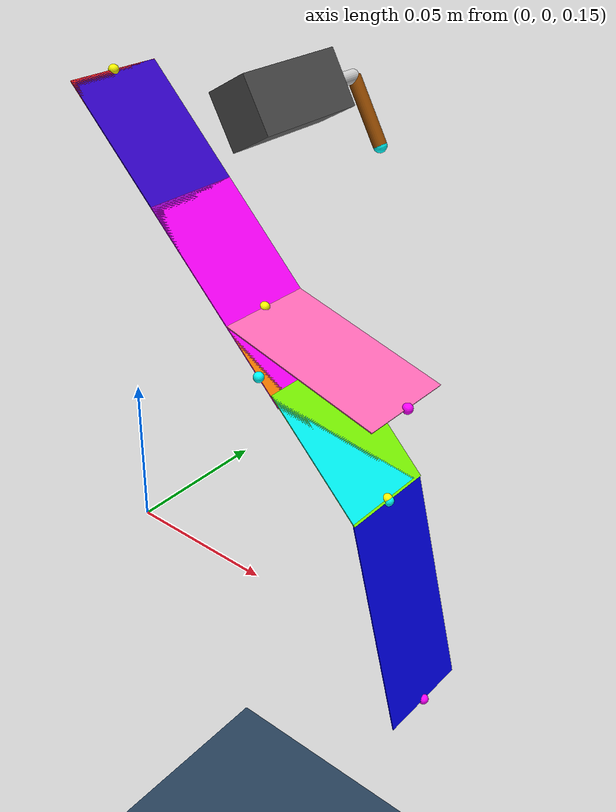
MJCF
<mujoco>
    <option timestep="0.0001" gravity="0 0 -9.81" iterations="50" solver="Newton">
        <flag contact="enable" />
    </option>
    <asset>
        <texture type="skybox" builtin="gradient" rgb1="0.3 0.5 0.7" rgb2="0 0 0" width="512" height="3072"/>
        <texture type="2d" name="groundplane" builtin="checker" mark="edge" rgb1="0.2 0.3 0.4" rgb2="0.1 0.2 0.3" markrgb="0.8 0.8 0.8" width="300" height="300"/>
        <material name="groundplane" texture="groundplane" texuniform="true" texrepeat="5 5" reflectance="0.2"/>
    </asset>
    <default>
        <default class="cardstock">
            <joint type="hinge" damping="0.001" stiffness="0.01" frictionloss="0.001" armature="0.0001"/>
            <geom rgba="0.9 0.9 0.8 1" mass="0.001" margin="0.0002" condim="3"/>
        </default>
    </default>

    <worldbody>
        <light pos="0 0 1" />
        <geom name="floor" size="0 0 0.05" type="plane" material="groundplane"/>
        <camera name="side_view" pos="0 -0.2 0.3" xyaxes="1 0 0 0 1 1" />

        <body name="larger_strip_1" pos="0 0 0.3" axisangle="0 1 0 45">
            <joint name="larger_hinge_1" class="cardstock" axis="0 1 0" />
            <site name="triangle_site" pos="0 0 0" size="0.0015" rgba="1 1 0 1" />
            <geom type="box" size="0.02075 0.015 0.00015" rgba="0.9 0.1 0.1 1" pos="0.02075 0 0"/>

            <body name="larger_strip_2" pos="0.0415 0 0">
                <joint name="larger_hinge_2" class="cardstock" axis="0 1 0" />
                <geom type="box" size="0.0279 0.015 0.00015" rgba="1 0.5 0 1" pos="0.0279 0 0"/>

                <body name="motor_connector_1" pos="0 0 0">
                    <joint name="motor_joint_1" class="cardstock" axis="0 1 0" />
                    <geom type="box" size="0.025 0.015 0.00015" rgba="1 1 0 1" pos="0.025 0 0"/>
                    <site name="motor_connector_1_site" pos="0.05 0 0" size="0.0015" rgba="0 1 1 1"/>
                    <site name="motor_connector_3_site" pos="0.05 -0.015 0.00015" size="0.0015" rgba="0 1 1 1"/>
                </body>

                <body name="larger_strip_3" pos="0.0558 0 0.00035">
                    <joint name="larger_hinge_3" class="cardstock" axis="0 1 0" />
                    <geom type="box" size="0.02005 0.015 0.00015" rgba="0.5 1 0 1" pos="0.02005 0 0"/>
                    <site name="triangle_site_2" pos="0.0401 0 0" size="0.0015" rgba="0 1 1 1"/>
                    <body name="square_side_2" pos="0 0 0">
                        <joint name="square_hinge_2" class="cardstock" axis="0 1 0" />
                        <geom type="box" size="0.0197 0.015 0.00015" rgba="0 1 1 1" pos="0.0197 0 0"/>
                        <site name="square_side_2_site" pos="0.0394 0 0" size="0.0015" rgba="1 1 0 1"/>
                        <body name="lower_triangle_2" pos="0.0394 0 0" axisangle="0 1 0 30">
                            <joint name="lower_triangle_2_hinge" class="cardstock" axis="0 1 0" />
                            <geom type="box" size="0.03285 0.015 0.00015" rgba="0 0 1 1" pos="0.03285 0 0"/>
                            <site name="lower_triangle_2_site" pos="0.0657 0 0" size="0.0015" rgba="1 0 1 1"/>
                        </body>
                    </body>
                </body>
            </body>
            <body name="square_side_1" pos="0 0 0">
                <joint name="square_hinge_1" class="cardstock" axis="0 1 0" />
                <geom type="box" size="0.01965 0.015 0.00015" rgba="0.2 0 0.8 1" pos="0.01965 0 0"/>
                <body name="square_base" pos="0.0393 0 0">
                    <joint name="square_base_hinge" class="cardstock" axis="0 1 0" />
                    <geom type="box" size="0.01835 0.015 0.00015" rgba="0.6 0 0.8 1" pos="0.01835 0 0"/>
                    <site name="square_base_site" pos="0.0367 0 0" size="0.0015" rgba="1 1 0 1"/>

                    <body name="motor_connector_2" pos="0 0 0">
                        <joint name="motor_joint_2" class="cardstock" axis="0 1 0" />
                        <geom type="box" size="0.03095 0.015 0.00015" rgba="1 0 1 1" pos="0.03095 0 0"/>
                        <site name="motor_connector_2_site" pos="0.0619 0 0" size="0.0015" rgba="0 1 1 1"/>
                    </body>

                    <body name="lower_triangle" pos="0.0367 0 0" axisangle="0 1 0 -30">
                        <joint name="lower_triangle_hinge" class="cardstock" axis="0 1 0" />
                        <geom type="box" size="0.0245 0.015 0.00015" rgba="1 0.4 0.7 1" pos="0.0245 0 0"/>
                        <site name="lower_triangle_site" pos="0.049 0 0" size="0.0015" rgba="1 0 1 1"/>
                    </body>
                </body>
            </body>
        </body>

        <body name="motor" pos="0.0915 -0.037 0.317" axisangle="0 1 0 -30">
            <geom name="motor_housing" type="box" size="0.005 0.013 0.006" rgba="0.3 0.3 0.3 1"/>

            <body name="link_arm" pos="0 0 0">
                <joint name="pivot" type="hinge" axis="0 1 0" damping="0.0002" armature="0.005" ref="45"/>

                <geom name="shaft" type="cylinder" fromto="0 0.013 0 0 0.022 0" size="0.0015" rgba="0.8 0.8 0.8 1"/>

                <geom name="motor_link" type="cylinder" fromto="0 0.022 0 0 0.022 -0.015" size="0.0015" rgba="0.6 0.3 0 1"/>

                <site name="motor_connector_0_site" pos="0 0.022 -0.015" size="0.0015" rgba="0 1 1 1"/>
            </body>
        </body>
    </worldbody>
    <equality>
        <connect site1="triangle_site_2" site2="triangle_site" />
        <connect site1="square_base_site" site2="square_side_2_site" />
        <connect site1="lower_triangle_site" site2="lower_triangle_2_site" />
        <connect site1="motor_connector_1_site" site2="motor_connector_2_site" />
        <connect site1="motor_connector_0_site" site2="motor_connector_3_site" />
    </equality>
    <actuator>
        <general name="dc_motor" joint="pivot" gear="100.37" gaintype="fixed" gainprm="0.00026055" biastype="affine" biasprm="0 0 -4.06e-7" ctrllimited="true" ctrlrange="-6 6"/>
    </actuator>

</mujoco>
